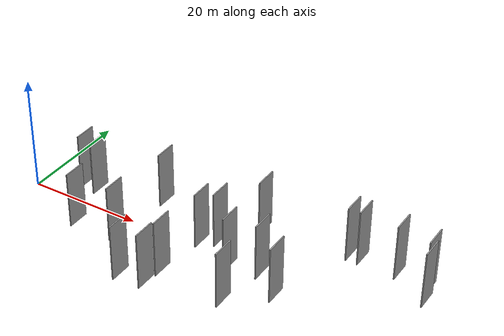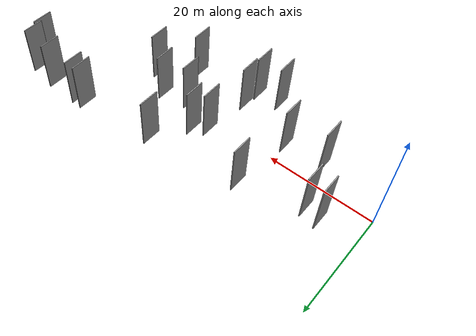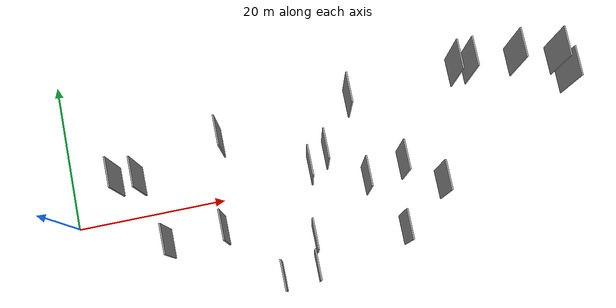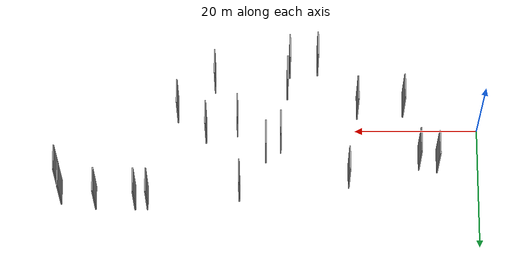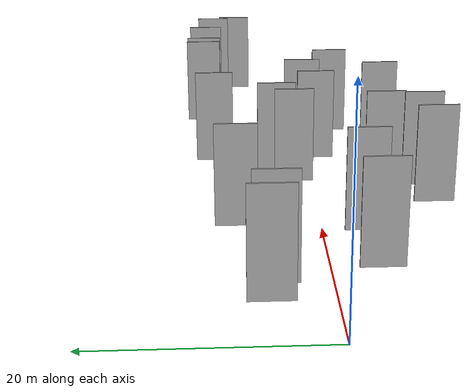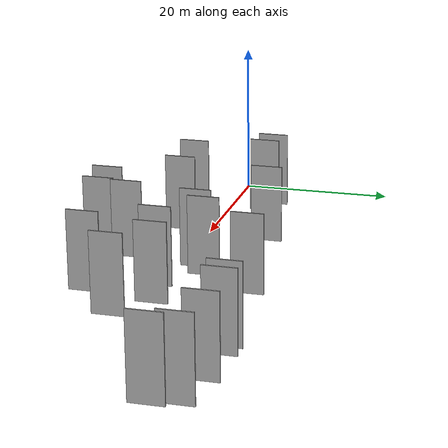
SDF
<sdf version="1.6">
 <world name="default">
  <scene>
   <sky><clouds><speed>12</speed></clouds></sky>
   <ambient>0.4 0.4 0.4 1</ambient>
   <background>0.7 0.7 0.7 1</background>
   <shadows>1</shadows>
  </scene>
  <gravity>0 0 -9.8066</gravity>
  <magnetic_field>6e-06 2.3e-05 -4.2e-05</magnetic_field>
  <physics default="0" name="default_physics" type="ode">
   <ode>
    <solver>
     <type>quick</type>
     <iters>10</iters>
     <sor>1.0</sor>
     <use_dynamic_moi_rescaling>0</use_dynamic_moi_rescaling>
    </solver>
    <constraints>
     <cfm>0</cfm>
     <erp>0.2</erp>
     <contact_max_correcting_vel>100</contact_max_correcting_vel>
     <contact_surface_layer>0.001</contact_surface_layer>
    </constraints>
   </ode>
   <max_step_size>0.004</max_step_size>
   <real_time_factor>1</real_time_factor>
   <real_time_update_rate>250</real_time_update_rate>
  </physics>
  <light name="sun" type="directional">
   <pose>0 0 10 0 0 0</pose>
   <diffuse>0.8 0.8 0.8 1</diffuse>
   <specular>0.2 0.2 0.2 1</specular>
   <attenuation>
    <range>1000</range>
    <constant>0.9</constant>
    <linear>0.01</linear>
    <quadratic>0.001</quadratic>
   </attenuation>
   <direction>-0.5 0.1 -0.9</direction>
  </light>
  <model name="grey_wall_1">
   <static>1</static>
   <pose>39.3201 -1.1113 0.0 0.000000 0.000000 1.570796</pose>
   <link name="link">
    <pose>0 0 5.00 0 0 0</pose>
    <collision name="collision"><geometry><box><size>4.00 0.2 10.00</size></box></geometry></collision>
    <visual name="visual">
     <cast_shadows>0</cast_shadows>
     <geometry><box><size>4.00 0.2 10.00</size></box></geometry>
     <material>
      <script>
       <uri>model://grey_wall/materials/scripts</uri>
       <uri>model://grey_wall/materials/textures</uri>
       <name>vrc/grey_wall</name>
      </script>
     </material>
    </visual>
   </link>
  </model>
  <model name="grey_wall_2">
   <static>1</static>
   <pose>21.1758 7.9004 0.0 0.000000 0.000000 1.570796</pose>
   <link name="link">
    <pose>0 0 5.00 0 0 0</pose>
    <collision name="collision"><geometry><box><size>4.00 0.2 10.00</size></box></geometry></collision>
    <visual name="visual">
     <cast_shadows>0</cast_shadows>
     <geometry><box><size>4.00 0.2 10.00</size></box></geometry>
     <material>
      <script>
       <uri>model://grey_wall/materials/scripts</uri>
       <uri>model://grey_wall/materials/textures</uri>
       <name>vrc/grey_wall</name>
      </script>
     </material>
    </visual>
   </link>
  </model>
  <model name="grey_wall_3">
   <static>1</static>
   <pose>34.6801 3.4455 0.0 0.000000 0.000000 1.570796</pose>
   <link name="link">
    <pose>0 0 5.00 0 0 0</pose>
    <collision name="collision"><geometry><box><size>4.00 0.2 10.00</size></box></geometry></collision>
    <visual name="visual">
     <cast_shadows>0</cast_shadows>
     <geometry><box><size>4.00 0.2 10.00</size></box></geometry>
     <material>
      <script>
       <uri>model://grey_wall/materials/scripts</uri>
       <uri>model://grey_wall/materials/textures</uri>
       <name>vrc/grey_wall</name>
      </script>
     </material>
    </visual>
   </link>
  </model>
  <model name="grey_wall_4">
   <static>1</static>
   <pose>42.9795 -8.7372 0.0 0.000000 0.000000 1.570796</pose>
   <link name="link">
    <pose>0 0 5.00 0 0 0</pose>
    <collision name="collision"><geometry><box><size>4.00 0.2 10.00</size></box></geometry></collision>
    <visual name="visual">
     <cast_shadows>0</cast_shadows>
     <geometry><box><size>4.00 0.2 10.00</size></box></geometry>
     <material>
      <script>
       <uri>model://grey_wall/materials/scripts</uri>
       <uri>model://grey_wall/materials/textures</uri>
       <name>vrc/grey_wall</name>
      </script>
     </material>
    </visual>
   </link>
  </model>
  <model name="grey_wall_5">
   <static>1</static>
   <pose>19.6572 -4.1081 0.0 0.000000 0.000000 1.570796</pose>
   <link name="link">
    <pose>0 0 5.00 0 0 0</pose>
    <collision name="collision"><geometry><box><size>4.00 0.2 10.00</size></box></geometry></collision>
    <visual name="visual">
     <cast_shadows>0</cast_shadows>
     <geometry><box><size>4.00 0.2 10.00</size></box></geometry>
     <material>
      <script>
       <uri>model://grey_wall/materials/scripts</uri>
       <uri>model://grey_wall/materials/textures</uri>
       <name>vrc/grey_wall</name>
      </script>
     </material>
    </visual>
   </link>
  </model>
  <model name="grey_wall_6">
   <static>1</static>
   <pose>6.6770 5.2937 0.0 0.000000 0.000000 1.570796</pose>
   <link name="link">
    <pose>0 0 5.00 0 0 0</pose>
    <collision name="collision"><geometry><box><size>4.00 0.2 10.00</size></box></geometry></collision>
    <visual name="visual">
     <cast_shadows>0</cast_shadows>
     <geometry><box><size>4.00 0.2 10.00</size></box></geometry>
     <material>
      <script>
       <uri>model://grey_wall/materials/scripts</uri>
       <uri>model://grey_wall/materials/textures</uri>
       <name>vrc/grey_wall</name>
      </script>
     </material>
    </visual>
   </link>
  </model>
  <model name="grey_wall_7">
   <static>1</static>
   <pose>56.0255 11.4778 0.0 0.000000 0.000000 1.570796</pose>
   <link name="link">
    <pose>0 0 5.00 0 0 0</pose>
    <collision name="collision"><geometry><box><size>4.00 0.2 10.00</size></box></geometry></collision>
    <visual name="visual">
     <cast_shadows>0</cast_shadows>
     <geometry><box><size>4.00 0.2 10.00</size></box></geometry>
     <material>
      <script>
       <uri>model://grey_wall/materials/scripts</uri>
       <uri>model://grey_wall/materials/textures</uri>
       <name>vrc/grey_wall</name>
      </script>
     </material>
    </visual>
   </link>
  </model>
  <model name="grey_wall_8">
   <static>1</static>
   <pose>9.6455 4.7786 0.0 0.000000 0.000000 1.570796</pose>
   <link name="link">
    <pose>0 0 5.00 0 0 0</pose>
    <collision name="collision"><geometry><box><size>4.00 0.2 10.00</size></box></geometry></collision>
    <visual name="visual">
     <cast_shadows>0</cast_shadows>
     <geometry><box><size>4.00 0.2 10.00</size></box></geometry>
     <material>
      <script>
       <uri>model://grey_wall/materials/scripts</uri>
       <uri>model://grey_wall/materials/textures</uri>
       <name>vrc/grey_wall</name>
      </script>
     </material>
    </visual>
   </link>
  </model>
  <model name="grey_wall_9">
   <static>1</static>
   <pose>12.0997 -4.4254 0.0 0.000000 0.000000 1.570796</pose>
   <link name="link">
    <pose>0 0 5.00 0 0 0</pose>
    <collision name="collision"><geometry><box><size>4.00 0.2 10.00</size></box></geometry></collision>
    <visual name="visual">
     <cast_shadows>0</cast_shadows>
     <geometry><box><size>4.00 0.2 10.00</size></box></geometry>
     <material>
      <script>
       <uri>model://grey_wall/materials/scripts</uri>
       <uri>model://grey_wall/materials/textures</uri>
       <name>vrc/grey_wall</name>
      </script>
     </material>
    </visual>
   </link>
  </model>
  <model name="grey_wall_10">
   <static>1</static>
   <pose>30.6636 -11.3826 0.0 0.000000 0.000000 1.570796</pose>
   <link name="link">
    <pose>0 0 5.00 0 0 0</pose>
    <collision name="collision"><geometry><box><size>4.00 0.2 10.00</size></box></geometry></collision>
    <visual name="visual">
     <cast_shadows>0</cast_shadows>
     <geometry><box><size>4.00 0.2 10.00</size></box></geometry>
     <material>
      <script>
       <uri>model://grey_wall/materials/scripts</uri>
       <uri>model://grey_wall/materials/textures</uri>
       <name>vrc/grey_wall</name>
      </script>
     </material>
    </visual>
   </link>
  </model>
  <model name="grey_wall_11">
   <static>1</static>
   <pose>44.4753 0.0213 0.0 0.000000 0.000000 1.570796</pose>
   <link name="link">
    <pose>0 0 5.00 0 0 0</pose>
    <collision name="collision"><geometry><box><size>4.00 0.2 10.00</size></box></geometry></collision>
    <visual name="visual">
     <cast_shadows>0</cast_shadows>
     <geometry><box><size>4.00 0.2 10.00</size></box></geometry>
     <material>
      <script>
       <uri>model://grey_wall/materials/scripts</uri>
       <uri>model://grey_wall/materials/textures</uri>
       <name>vrc/grey_wall</name>
      </script>
     </material>
    </visual>
   </link>
  </model>
  <model name="grey_wall_12">
   <static>1</static>
   <pose>26.1007 -11.8129 0.0 0.000000 0.000000 1.570796</pose>
   <link name="link">
    <pose>0 0 5.00 0 0 0</pose>
    <collision name="collision"><geometry><box><size>4.00 0.2 10.00</size></box></geometry></collision>
    <visual name="visual">
     <cast_shadows>0</cast_shadows>
     <geometry><box><size>4.00 0.2 10.00</size></box></geometry>
     <material>
      <script>
       <uri>model://grey_wall/materials/scripts</uri>
       <uri>model://grey_wall/materials/textures</uri>
       <name>vrc/grey_wall</name>
      </script>
     </material>
    </visual>
   </link>
  </model>
  <model name="grey_wall_13">
   <static>1</static>
   <pose>49.0920 -3.5994 0.0 0.000000 0.000000 1.570796</pose>
   <link name="link">
    <pose>0 0 5.00 0 0 0</pose>
    <collision name="collision"><geometry><box><size>4.00 0.2 10.00</size></box></geometry></collision>
    <visual name="visual">
     <cast_shadows>0</cast_shadows>
     <geometry><box><size>4.00 0.2 10.00</size></box></geometry>
     <material>
      <script>
       <uri>model://grey_wall/materials/scripts</uri>
       <uri>model://grey_wall/materials/textures</uri>
       <name>vrc/grey_wall</name>
      </script>
     </material>
    </visual>
   </link>
  </model>
  <model name="grey_wall_14">
   <static>1</static>
   <pose>68.7990 7.5972 0.0 0.000000 0.000000 1.570796</pose>
   <link name="link">
    <pose>0 0 5.00 0 0 0</pose>
    <collision name="collision"><geometry><box><size>4.00 0.2 10.00</size></box></geometry></collision>
    <visual name="visual">
     <cast_shadows>0</cast_shadows>
     <geometry><box><size>4.00 0.2 10.00</size></box></geometry>
     <material>
      <script>
       <uri>model://grey_wall/materials/scripts</uri>
       <uri>model://grey_wall/materials/textures</uri>
       <name>vrc/grey_wall</name>
      </script>
     </material>
    </visual>
   </link>
  </model>
  <model name="grey_wall_15">
   <static>1</static>
   <pose>32.2501 1.7436 0.0 0.000000 0.000000 1.570796</pose>
   <link name="link">
    <pose>0 0 5.00 0 0 0</pose>
    <collision name="collision"><geometry><box><size>4.00 0.2 10.00</size></box></geometry></collision>
    <visual name="visual">
     <cast_shadows>0</cast_shadows>
     <geometry><box><size>4.00 0.2 10.00</size></box></geometry>
     <material>
      <script>
       <uri>model://grey_wall/materials/scripts</uri>
       <uri>model://grey_wall/materials/textures</uri>
       <name>vrc/grey_wall</name>
      </script>
     </material>
    </visual>
   </link>
  </model>
  <model name="grey_wall_16">
   <static>1</static>
   <pose>68.0790 10.4414 0.0 0.000000 0.000000 1.570796</pose>
   <link name="link">
    <pose>0 0 5.00 0 0 0</pose>
    <collision name="collision"><geometry><box><size>4.00 0.2 10.00</size></box></geometry></collision>
    <visual name="visual">
     <cast_shadows>0</cast_shadows>
     <geometry><box><size>4.00 0.2 10.00</size></box></geometry>
     <material>
      <script>
       <uri>model://grey_wall/materials/scripts</uri>
       <uri>model://grey_wall/materials/textures</uri>
       <name>vrc/grey_wall</name>
      </script>
     </material>
    </visual>
   </link>
  </model>
  <model name="grey_wall_17">
   <static>1</static>
   <pose>39.0511 10.0274 0.0 0.000000 0.000000 1.570796</pose>
   <link name="link">
    <pose>0 0 5.00 0 0 0</pose>
    <collision name="collision"><geometry><box><size>4.00 0.2 10.00</size></box></geometry></collision>
    <visual name="visual">
     <cast_shadows>0</cast_shadows>
     <geometry><box><size>4.00 0.2 10.00</size></box></geometry>
     <material>
      <script>
       <uri>model://grey_wall/materials/scripts</uri>
       <uri>model://grey_wall/materials/textures</uri>
       <name>vrc/grey_wall</name>
      </script>
     </material>
    </visual>
   </link>
  </model>
  <model name="grey_wall_18">
   <static>1</static>
   <pose>54.0005 11.4884 0.0 0.000000 0.000000 1.570796</pose>
   <link name="link">
    <pose>0 0 5.00 0 0 0</pose>
    <collision name="collision"><geometry><box><size>4.00 0.2 10.00</size></box></geometry></collision>
    <visual name="visual">
     <cast_shadows>0</cast_shadows>
     <geometry><box><size>4.00 0.2 10.00</size></box></geometry>
     <material>
      <script>
       <uri>model://grey_wall/materials/scripts</uri>
       <uri>model://grey_wall/materials/textures</uri>
       <name>vrc/grey_wall</name>
      </script>
     </material>
    </visual>
   </link>
  </model>
  <model name="grey_wall_19">
   <static>1</static>
   <pose>31.0856 -7.5667 0.0 0.000000 0.000000 1.570796</pose>
   <link name="link">
    <pose>0 0 5.00 0 0 0</pose>
    <collision name="collision"><geometry><box><size>4.00 0.2 10.00</size></box></geometry></collision>
    <visual name="visual">
     <cast_shadows>0</cast_shadows>
     <geometry><box><size>4.00 0.2 10.00</size></box></geometry>
     <material>
      <script>
       <uri>model://grey_wall/materials/scripts</uri>
       <uri>model://grey_wall/materials/textures</uri>
       <name>vrc/grey_wall</name>
      </script>
     </material>
    </visual>
   </link>
  </model>
  <model name="grey_wall_20">
   <static>1</static>
   <pose>62.4493 11.3669 0.0 0.000000 0.000000 1.570796</pose>
   <link name="link">
    <pose>0 0 5.00 0 0 0</pose>
    <collision name="collision"><geometry><box><size>4.00 0.2 10.00</size></box></geometry></collision>
    <visual name="visual">
     <cast_shadows>0</cast_shadows>
     <geometry><box><size>4.00 0.2 10.00</size></box></geometry>
     <material>
      <script>
       <uri>model://grey_wall/materials/scripts</uri>
       <uri>model://grey_wall/materials/textures</uri>
       <name>vrc/grey_wall</name>
      </script>
     </material>
    </visual>
   </link>
  </model>
 </world>
</sdf>
